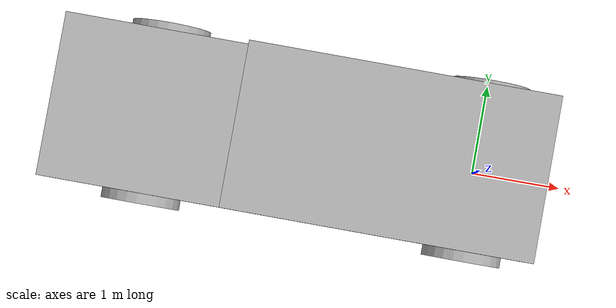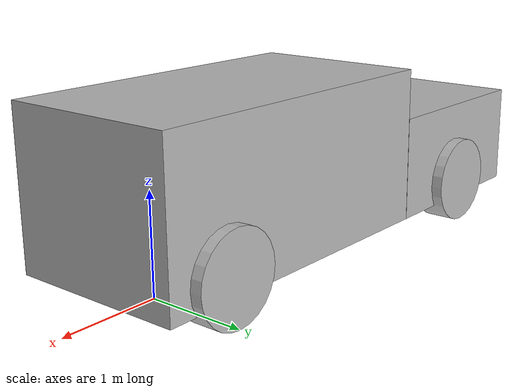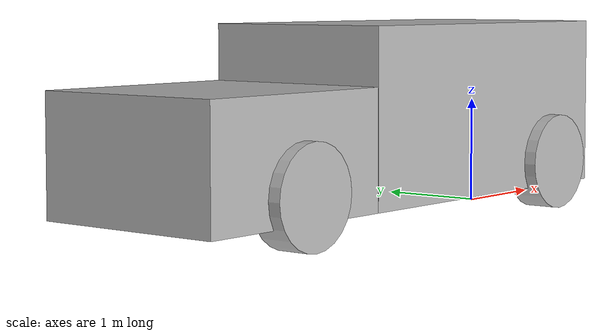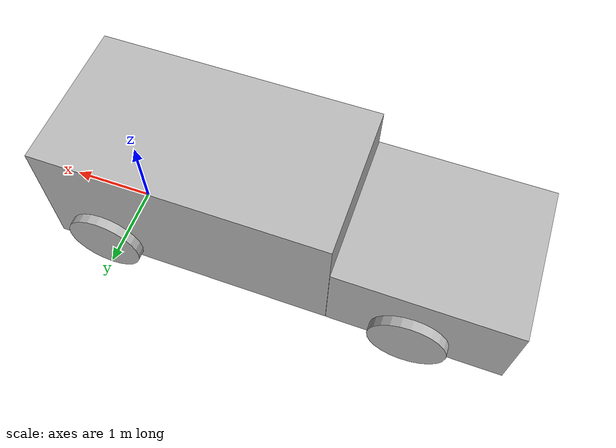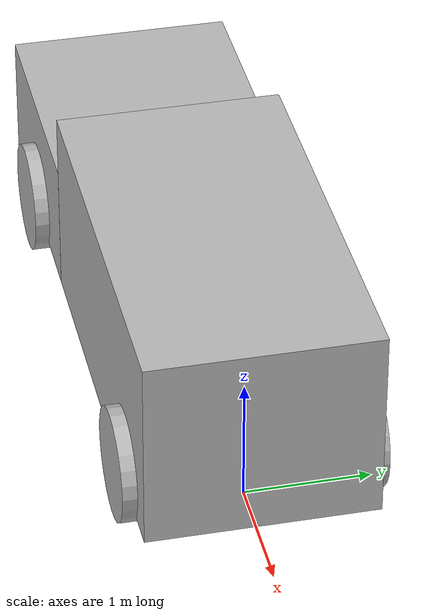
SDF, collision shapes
<?xml version="1.0" ?>
<!-- rosrun gazebo_ros spawn_model -model F-150 -sdf -file /home/bigb/gazebo_f150_ws/src/gazebo_f150/models/F150/model.sdf -->

<sdf version="1.5">
  <model name="F150">
    <pose>0 0 0 0 0 0</pose>
    <static>false</static>
    <self_collide>false</self_collide>

    <link name="chassis">
    <pose>-1.953 0 0.84451 0 0 0</pose>
      <inertial>
        <inertia>
          <ixx>904</ixx>
          <ixy>0</ixy>
          <ixz>0</ixz>
          <iyy>5584</iyy>
          <iyz>0</iyz>
          <izz>5900</izz>
        </inertia>
        <mass>2260.0</mass>
      </inertial>
      <collision name="collision_chassis_front">
        <pose>0.935 0 0.15000000000000002 0 0 0</pose>
        <geometry>
          <box>
            <size>3.370 1.80 1.56</size>
          </box>
        </geometry>
      </collision>
      <collision name="collision_chassis_back">
        <pose>-1.770 0 -0.10350000000000004 0 0 0</pose>
        <geometry>
          <box>
            <size>2.035 1.80 1.053</size>
          </box>
        </geometry>
      </collision>
      <visual name="visual_chassis_base">
        <geometry>
          <mesh>
            <uri>model://f150_ackermann/meshes/F150.dae</uri>
          </mesh>
        </geometry>
      </visual>
    </link>

    <link name="steering_centerlink_link">
    <pose>-0.340540632326142 0 0.445 0 0 0</pose>
      <inertial>
        <inertia>
          <ixx>0.1</ixx>
          <ixy>0</ixy>
          <ixz>0</ixz>
          <iyy>0.1</iyy>
          <iyz>0</iyz>
          <izz>0.1</izz>
        </inertia>
        <mass>0.1</mass>
      </inertial>
      <collision name="collision">
        <pose>0 0 0 0 0 0</pose>
        <geometry>
            <box>
              <size>0.1 0.1 0.1</size>
            </box>
        </geometry>
      </collision>
      <visual name="visual">
        <pose>0 0 0 1.57079632679 0 0</pose>
        <geometry>
          <cylinder>
            <radius>0.01</radius>
            <length>1.15</length>
          </cylinder>
        </geometry>
      </visual>
    </link>

    <joint name="centerlink2chassis_joint" type="prismatic">
      <parent>chassis</parent>
      <child>steering_centerlink_link</child>
      <pose>0 0 0 0 0 0</pose>
      <axis>
        <xyz>0 1 0</xyz>
        <dynamics>
          <spring_stiffness>1</spring_stiffness>
          <damping>3</damping>
          <friction>1</friction>
          <spring_reference>0</spring_reference>
        </dynamics>
      </axis>
    </joint>

    <link name="front_left_wheel_link">
    <pose>0 0.8665 0.445 0 0 0</pose>
      <inertial>
        <inertia>
          <ixx>2</ixx>
          <ixy>0</ixy>
          <ixz>0</ixz>
          <iyy>3.46</iyy>
          <iyz>0</iyz>
          <izz>2</izz>
        </inertia>
        <mass>35.0</mass>
      </inertial>
      <collision name="collision">
      <pose>0 0 0 1.5707963267948966 0 0</pose>
        <geometry>
          <cylinder>
            <radius>0.445</radius>
            <length>0.297</length>
          </cylinder>
        </geometry>
        <surface>
          <friction>
            <ode>
              <mu>0.7</mu>
              <mu2>0.7</mu2>
            </ode>
          </friction>
        </surface>
      </collision>
      <visual name="visual">
      <pose>0 0 0 0 0 3.141592653589793</pose>
        <geometry>
          <mesh>
            <uri>model://f150_ackermann/meshes/wheel.dae</uri>
          </mesh>
        </geometry>
      </visual>
      <frame name="left_wheel_frame">
      </frame>
    </link>

    <link name="left_steering_arm_link">
    <pose>-0.170270316163071 0.826089364843796  0.445  0 0 0</pose> <!-- Front wheel position with rotation -->
      <inertial>
        <inertia>
          <ixx>0.1</ixx>
          <ixy>0</ixy>
          <ixz>0</ixz>
          <iyy>0.1</iyy>
          <iyz>0</iyz>
          <izz>0.1</izz>
        </inertia>
        <mass>0.1</mass>
      </inertial>
      <collision name="collision">
        <pose>0 0 0 0 0 0</pose>
        <geometry>
          <cylinder>
            <radius>0.005</radius>
            <length>0.01</length>
          </cylinder>
        </geometry>
      </collision>
      <visual name="visual">
        <pose> 0 0 0 0 1.5707963267948966 0.23302098997801912</pose>
        <geometry>
          <cylinder>
            <radius>0.01</radius>
            <length>0.35</length>
          </cylinder>
        </geometry>
      </visual>
    </link>

    <link name="left_tierod_link">
    <pose>-0.340540632326142 0.6803393648437959 0.445 0 0 0</pose> <!-- Front wheel position with rotation -->
      <inertial>
        <inertia>
          <ixx>0.1</ixx>
          <ixy>0</ixy>
          <ixz>0</ixz>
          <iyy>0.1</iyy>
          <iyz>0</iyz>
          <izz>0.1</izz>
        </inertia>
        <mass>0.1</mass>
      </inertial>
      <collision name="collision">
        <pose>0 0 0 0 0 0</pose>
        <geometry>
          <box>
            <size>0.1 0.1 0.1</size>
          </box>
        </geometry>
      </collision>
      <visual name="visual">
        <pose>0 0 0 1.5707963267948966 0 0</pose>
        <geometry>
          <cylinder>
            <radius>0.01</radius>
            <length>0.21067872968759194</length>
          </cylinder>
        </geometry>
      </visual>
    </link>

    <link name="front_left_suspension_link">
    <pose>0 0.8665 0.595 0 0 0</pose>
      <inertial>
        <inertia>
          <ixx>0.1</ixx>
          <ixy>0</ixy>
          <ixz>0</ixz>
          <iyy>0.1</iyy>
          <iyz>0</iyz>
          <izz>0.1</izz>
        </inertia>
        <mass>0.01</mass>
      </inertial>

      <collision name="collision">
      <pose>0 0 0 0 0 0</pose>
        <geometry>
          <box>
            <size>0.1 0.1 0.1</size>
          </box>
        </geometry>
      </collision>

      <visual name="visual">
      <pose>0 0 0 0 0 0 </pose>
        <geometry>
          <cylinder>
            <radius>0.01</radius>
            <length>0.3</length>
          </cylinder>
        </geometry>
      </visual>
    </link>

    <joint name="left_arm2wheel_joint" type="revolute">
      <parent>left_steering_arm_link</parent>
      <child>front_left_wheel_link</child>
      <pose>0 0 0 0 0 0</pose>
      <axis>
        <xyz>0 1 0</xyz>
      </axis>
    </joint>

    <joint name="left_arm2tierod_joint" type="ball">
      <parent>left_steering_arm_link</parent>
      <child>left_tierod_link</child>
      <pose>0 0.10533936484379597 0 0 0 0</pose>
    </joint>

    <joint name="left_tierod2centerlink_joint" type="ball">
      <parent>steering_centerlink_link</parent>
      <child>left_tierod_link</child>
      <pose>0 -0.10533936484379597 0 0 0 0</pose>
    </joint>

    <joint name="left_wheel2chassis_joint" type="revolute">
      <parent>left_steering_arm_link</parent>
      <child>front_left_suspension_link</child>
      <pose>0 0 0.15 0 0 0</pose>
      <axis>
        <xyz>0 0 1</xyz>
      </axis>
    </joint>

    <joint name="front_left_suspension2chassis_joint" type="prismatic">
      <parent>chassis</parent>
      <child>front_left_suspension_link</child>
      <pose>0 0 0 0 0 0</pose>
      <axis>
        <xyz>0 0 1</xyz>
        <dynamics>
          <spring_stiffness>60000</spring_stiffness>
          <damping>5000</damping>
          <spring_reference>-0.0645</spring_reference>
        </dynamics>
      </axis>
    </joint>

    <link name="rear_left_wheel_link">
    <pose>-3.651 0.8665 0.445 0 0 0</pose>
      <inertial>
        <inertia>
          <ixx>2</ixx>
          <ixy>0</ixy>
          <ixz>0</ixz>
          <iyy>3.46</iyy>
          <iyz>0</iyz>
          <izz>2</izz>
        </inertia>
        <mass>35.0</mass>
      </inertial>

      <collision name="collision">
      <pose>0 0 0 1.5707963267948966 0 0</pose>
        <geometry>
          <cylinder>
            <radius>0.445</radius>
            <length>0.297</length>
          </cylinder>
        </geometry>
        <surface>
          <friction>
            <ode>
              <mu>0.7</mu>
              <mu2>0.7</mu2>
            </ode>
          </friction>
        </surface>
      </collision>

      <visual name="visual">
      <pose>0 0 0 3.141592653589793 0 0 </pose>
        <geometry>
          <mesh>
            <uri>model://f150_ackermann/meshes/wheel.dae</uri>
          </mesh>
        </geometry>
      </visual>
    </link>

    <link name="rear_left_suspension_link">
    <pose>-3.651 0.8665 0.595 0 0 0</pose>
      <inertial>
        <inertia>
          <ixx>0.1</ixx>
          <ixy>0</ixy>
          <ixz>0</ixz>
          <iyy>0.1</iyy>
          <iyz>0</iyz>
          <izz>0.1</izz>
        </inertia>
        <mass>0.01</mass>
      </inertial>

      <collision name="collision">
      <pose>0 0 0 0 0 0</pose>
        <geometry>
          <box>
            <size>0.1 0.1 0.1</size>
          </box>
        </geometry>
      </collision>

      <visual name="visual">
      <pose>0 0 0 0 0 0 </pose>
        <geometry>
          <cylinder>
            <radius>0.01</radius>
            <length>0.3</length>
          </cylinder>
        </geometry>
      </visual>
    </link>

    <joint name="rear_left_wheel2suspension_joint" type="revolute">
      <parent>rear_left_suspension_link</parent>
      <child>rear_left_wheel_link</child>
      <pose>0 0 0 0 0 0</pose>
      <axis>
        <xyz>0 1 0</xyz>
      </axis>
    </joint>

    <joint name="rear_left_suspension2chassis_joint" type="prismatic">
      <parent>chassis</parent>
      <child>rear_left_suspension_link</child>
      <pose>0 0 0 0 0 0</pose>
      <axis>
        <xyz>0 0 1</xyz>
        <dynamics>
          <spring_stiffness>60000</spring_stiffness>
          <damping>5000</damping>
          <spring_reference>-0.073</spring_reference>
        </dynamics>
      </axis>
    </joint>

    <link name="front_right_wheel_link">
    <pose>0 -0.8665 0.445 0 0 0</pose>
      <inertial>
        <inertia>
          <ixx>2</ixx>
          <ixy>0</ixy>
          <ixz>0</ixz>
          <iyy>3.46</iyy>
          <iyz>0</iyz>
          <izz>2</izz>
        </inertia>
        <mass>35.0</mass>
      </inertial>
      <collision name="collision">
      <pose>0 0 0 1.5707963267948966 0 0</pose>
        <geometry>
          <cylinder>
            <radius>0.445</radius>
            <length>0.297</length>
          </cylinder>
        </geometry>
        <surface>
          <friction>
            <ode>
              <mu>0.7</mu>
              <mu2>0.7</mu2>
            </ode>
          </friction>
        </surface>
      </collision>
      <visual name="visual">
      <pose>0 0 0 0 0 0.0</pose>
        <geometry>
          <mesh>
            <uri>model://f150_ackermann/meshes/wheel.dae</uri>
          </mesh>
        </geometry>
      </visual>
      <frame name="right_wheel_frame">
      </frame>
    </link>

    <link name="right_steering_arm_link">
    <pose>-0.170270316163071 -0.826089364843796  0.445  0 0 0</pose> <!-- Front wheel position with rotation -->
      <inertial>
        <inertia>
          <ixx>0.1</ixx>
          <ixy>0</ixy>
          <ixz>0</ixz>
          <iyy>0.1</iyy>
          <iyz>0</iyz>
          <izz>0.1</izz>
        </inertia>
        <mass>0.1</mass>
      </inertial>
      <collision name="collision">
        <pose>0 0 0 0 0 0</pose>
        <geometry>
          <cylinder>
            <radius>0.005</radius>
            <length>0.01</length>
          </cylinder>
        </geometry>
      </collision>
      <visual name="visual">
        <pose> 0 0 0 0 1.5707963267948966 -0.23302098997801912</pose>
        <geometry>
          <cylinder>
            <radius>0.01</radius>
            <length>0.35</length>
          </cylinder>
        </geometry>
      </visual>
    </link>

    <link name="right_tierod_link">
    <pose>-0.340540632326142 -0.6803393648437959 0.445 0 0 0</pose> <!-- Front wheel position with rotation -->
      <inertial>
        <inertia>
          <ixx>0.1</ixx>
          <ixy>0</ixy>
          <ixz>0</ixz>
          <iyy>0.1</iyy>
          <iyz>0</iyz>
          <izz>0.1</izz>
        </inertia>
        <mass>0.1</mass>
      </inertial>
      <collision name="collision">
        <pose>0 0 0 0 0 0</pose>
        <geometry>
          <box>
            <size>0.1 0.1 0.1</size>
          </box>
        </geometry>
      </collision>
      <visual name="visual">
        <pose>0 0 0 1.5707963267948966 0 0</pose>
        <geometry>
          <cylinder>
            <radius>0.01</radius>
            <length>0.21067872968759194</length>
          </cylinder>
        </geometry>
      </visual>
    </link>

    <link name="front_right_suspension_link">
    <pose>0 -0.8665 0.595 0 0 0</pose>
      <inertial>
        <inertia>
          <ixx>0.1</ixx>
          <ixy>0</ixy>
          <ixz>0</ixz>
          <iyy>0.1</iyy>
          <iyz>0</iyz>
          <izz>0.1</izz>
        </inertia>
        <mass>0.01</mass>
      </inertial>

      <collision name="collision">
      <pose>0 0 0 0 0 0</pose>
        <geometry>
          <box>
            <size>0.1 0.1 0.1</size>
          </box>
        </geometry>
      </collision>

      <visual name="visual">
      <pose>0 0 0 0 0 0 </pose>
        <geometry>
          <cylinder>
            <radius>0.01</radius>
            <length>0.3</length>
          </cylinder>
        </geometry>
      </visual>
    </link>

    <joint name="right_arm2wheel_joint" type="revolute">
      <parent>right_steering_arm_link</parent>
      <child>front_right_wheel_link</child>
      <pose>0 0 0 0 0 0</pose>
      <axis>
        <xyz>0 1 0</xyz>
      </axis>
    </joint>

    <joint name="right_arm2tierod_joint" type="ball">
      <parent>right_steering_arm_link</parent>
      <child>right_tierod_link</child>
      <pose>0 -0.10533936484379597 0 0 0 0</pose>
    </joint>

    <joint name="right_tierod2centerlink_joint" type="ball">
      <parent>steering_centerlink_link</parent>
      <child>right_tierod_link</child>
      <pose>0 0.10533936484379597 0 0 0 0</pose>
    </joint>

    <joint name="right_wheel2chassis_joint" type="revolute">
      <parent>right_steering_arm_link</parent>
      <child>front_right_suspension_link</child>
      <pose>0 0 0.15 0 0 0</pose>
      <axis>
        <xyz>0 0 1</xyz>
      </axis>
    </joint>

    <joint name="front_right_suspension2chassis_joint" type="prismatic">
      <parent>chassis</parent>
      <child>front_right_suspension_link</child>
      <pose>0 0 0 0 0 0</pose>
      <axis>
        <xyz>0 0 1</xyz>
        <dynamics>
          <spring_stiffness>60000</spring_stiffness>
          <damping>5000</damping>
          <spring_reference>-0.0645</spring_reference>
        </dynamics>
      </axis>
    </joint>

    <link name="rear_right_wheel_link">
    <pose>-3.651 -0.8665 0.445 0 0 0</pose>
      <inertial>
        <inertia>
          <ixx>2</ixx>
          <ixy>0</ixy>
          <ixz>0</ixz>
          <iyy>3.46</iyy>
          <iyz>0</iyz>
          <izz>2</izz>
        </inertia>
        <mass>35.0</mass>
      </inertial>

      <collision name="collision">
      <pose>0 0 0 1.5707963267948966 0 0</pose>
        <geometry>
          <cylinder>
            <radius>0.445</radius>
            <length>0.297</length>
          </cylinder>
        </geometry>
        <surface>
          <friction>
            <ode>
              <mu>0.7</mu>
              <mu2>0.7</mu2>
            </ode>
          </friction>
        </surface>
      </collision>

      <visual name="visual">
      <pose>0 0 0 0.0 0 0 </pose>
        <geometry>
          <mesh>
            <uri>model://f150_ackermann/meshes/wheel.dae</uri>
          </mesh>
        </geometry>
      </visual>
    </link>

    <link name="rear_right_suspension_link">
    <pose>-3.651 -0.8665 0.595 0 0 0</pose>
      <inertial>
        <inertia>
          <ixx>0.1</ixx>
          <ixy>0</ixy>
          <ixz>0</ixz>
          <iyy>0.1</iyy>
          <iyz>0</iyz>
          <izz>0.1</izz>
        </inertia>
        <mass>0.01</mass>
      </inertial>

      <collision name="collision">
      <pose>0 0 0 0 0 0</pose>
        <geometry>
          <box>
            <size>0.1 0.1 0.1</size>
          </box>
        </geometry>
      </collision>

      <visual name="visual">
      <pose>0 0 0 0 0 0 </pose>
        <geometry>
          <cylinder>
            <radius>0.01</radius>
            <length>0.3</length>
          </cylinder>
        </geometry>
      </visual>
    </link>

    <joint name="rear_right_wheel2suspension_joint" type="revolute">
      <parent>rear_right_suspension_link</parent>
      <child>rear_right_wheel_link</child>
      <pose>0 0 0 0 0 0</pose>
      <axis>
        <xyz>0 1 0</xyz>
      </axis>
    </joint>

    <joint name="rear_right_suspension2chassis_joint" type="prismatic">
      <parent>chassis</parent>
      <child>rear_right_suspension_link</child>
      <pose>0 0 0 0 0 0</pose>
      <axis>
        <xyz>0 0 1</xyz>
        <dynamics>
          <spring_stiffness>60000</spring_stiffness>
          <damping>5000</damping>
          <spring_reference>-0.073</spring_reference>
        </dynamics>
      </axis>
    </joint>

<plugin name="motion_controller" filename="libmotion_controller.so"/>

</model>
</sdf>
